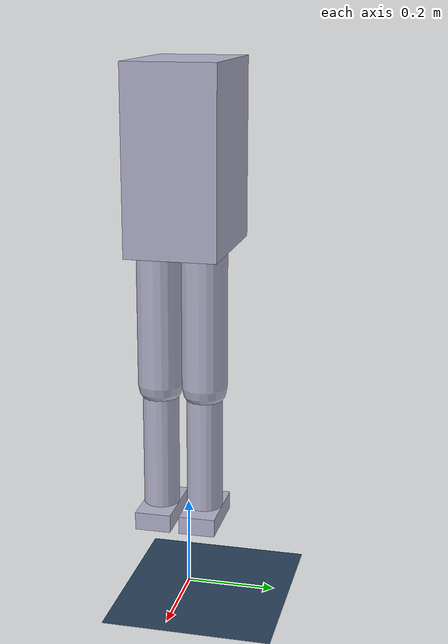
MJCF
<?xml version="1.0"?>
<mujoco model="simple_humanoid">
  <option timestep="0.01" gravity="0 0 -9.81" integrator="RK4"/>

  <asset>
    <texture name="grid" type="2d" builtin="checker" width="512" height="512" rgb1="0.1 0.2 0.3" rgb2="0.2 0.3 0.4"/>
    <material name="grid" texture="grid" texrepeat="1 1" texuniform="true" reflectance="0.2"/>
    <material name="body" rgba="0.7 0.7 0.8 1"/>
  </asset>

  <worldbody>
    <light pos="0 0 4" dir="0 0 -1"/>
    <geom name="floor" type="plane" size="10 10 0.1" material="grid" condim="3" friction="1 0.005 0.0001"/>

    <!-- Torso -->
    <body name="torso" pos="0 0 1.0">
      <joint name="root_x" type="slide" axis="1 0 0" damping="20"/>
      <joint name="root_y" type="slide" axis="0 1 0" damping="20"/>
      <joint name="root_z" type="slide" axis="0 0 1" damping="20"/>
      <joint name="root_rot_x" type="hinge" axis="1 0 0" damping="5"/>
      <joint name="root_rot_y" type="hinge" axis="0 1 0" damping="5"/>
      <joint name="root_rot_z" type="hinge" axis="0 0 1" damping="5"/>
      <geom name="torso_geom" type="box" size="0.15 0.1 0.2" mass="10" material="body"/>
      <inertial pos="0 0 0" mass="10" diaginertia="0.5 0.5 0.5"/>

      <!-- Left leg -->
      <body name="left_thigh" pos="0.05 -0.05 -0.2">
        <joint name="left_hip_x" type="hinge" axis="1 0 0" range="-1.57 1.57" damping="3"/>
        <joint name="left_hip_y" type="hinge" axis="0 1 0" range="-1.57 1.57" damping="3"/>
        <geom name="left_thigh_geom" type="capsule" size="0.05" fromto="0 0 0 0 0 -0.3" mass="3" material="body"/>
        <body name="left_shank" pos="0 0 -0.3">
          <joint name="left_knee" type="hinge" axis="0 1 0" range="-2.0 0" damping="3"/>
          <geom name="left_shank_geom" type="capsule" size="0.04" fromto="0 0 0 0 0 -0.3" mass="2" material="body"/>
          <body name="left_foot" pos="0 0 -0.3">
            <geom name="left_foot_geom" type="box" size="0.08 0.04 0.02" mass="1" material="body"/>
          </body>
        </body>
      </body>

      <!-- Right leg -->
      <body name="right_thigh" pos="0.05 0.05 -0.2">
        <joint name="right_hip_x" type="hinge" axis="1 0 0" range="-1.57 1.57" damping="3"/>
        <joint name="right_hip_y" type="hinge" axis="0 1 0" range="-1.57 1.57" damping="3"/>
        <geom name="right_thigh_geom" type="capsule" size="0.05" fromto="0 0 0 0 0 -0.3" mass="3" material="body"/>
        <body name="right_shank" pos="0 0 -0.3">
          <joint name="right_knee" type="hinge" axis="0 1 0" range="-2.0 0" damping="3"/>
          <geom name="right_shank_geom" type="capsule" size="0.04" fromto="0 0 0 0 0 -0.3" mass="2" material="body"/>
          <body name="right_foot" pos="0 0 -0.3">
            <geom name="right_foot_geom" type="box" size="0.08 0.04 0.02" mass="1" material="body"/>
          </body>
        </body>
      </body>
    </body>
  </worldbody>

  <actuator>
    <!-- Reduced gear ratios to prevent instability -->
    <motor name="root_x" joint="root_x" gear="10"/>
    <motor name="root_y" joint="root_y" gear="10"/>
    <motor name="root_z" joint="root_z" gear="10"/>
    <motor name="root_rot_x" joint="root_rot_x" gear="5"/>
    <motor name="root_rot_y" joint="root_rot_y" gear="5"/>
    <motor name="root_rot_z" joint="root_rot_z" gear="5"/>
    <motor name="left_hip_x" joint="left_hip_x" gear="20"/>
    <motor name="left_hip_y" joint="left_hip_y" gear="20"/>
    <motor name="left_knee" joint="left_knee" gear="20"/>
    <motor name="right_hip_x" joint="right_hip_x" gear="20"/>
    <motor name="right_hip_y" joint="right_hip_y" gear="20"/>
    <motor name="right_knee" joint="right_knee" gear="20"/>
  </actuator>
</mujoco>
